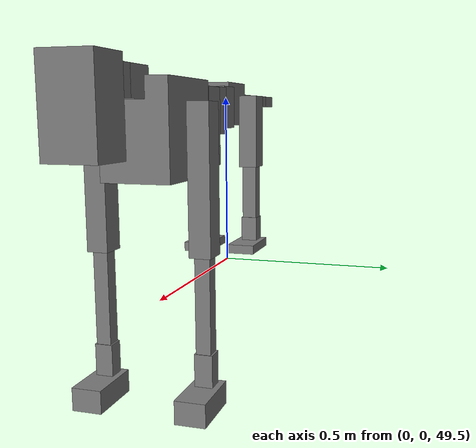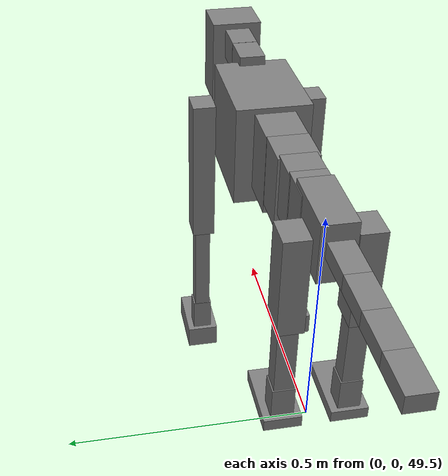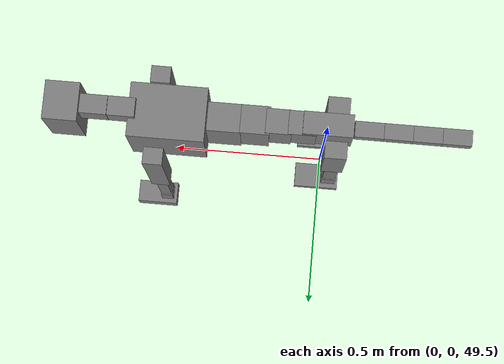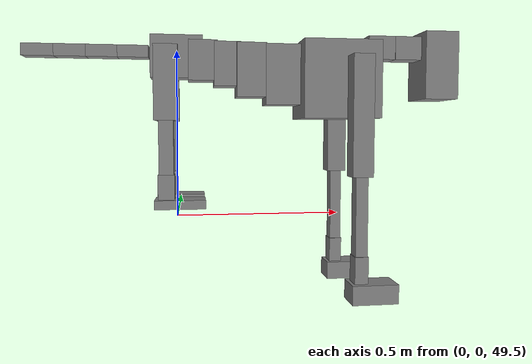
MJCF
<mujoco model="dog">

    <default>
        <joint armature="0.02" stiffness="1" damping="0.2" limited="true"/>
        <geom condim="3" friction="1 0.05 0.05" margin="0.01"/>
        <motor ctrllimited="true" ctrlrange="-1.0 1.0" forcelimited="true" gear="50"/>
    </default>

    <compiler inertiafromgeom="true" angle="radian"/>

    <option timestep="0.016" iterations="50" tolerance="1e-10" solver="Newton" jacobian="dense" cone="pyramidal"/>

    <size nconmax="20000" njmax="60000" nstack="5000000"/>
    <visual>
        <map force="0.1" zfar="30"/>
        <rgba haze="0.15 0.25 0.35 1"/>
        <quality shadowsize="2048"/>
        <global offwidth="800" offheight="800"/>
    </visual>

    <asset>
        <texture type="skybox" builtin="gradient" rgb1="0.3 0.5 0.7" rgb2="0 0 0" width="512" height="512"/>
        <texture name="texplane" type="2d" builtin="checker" rgb1=".2 .3 .4" rgb2=".1 0.15 0.2" width="512" height="512"
                 mark="cross" markrgb=".8 .8 .8"/>
        <texture name="texgeom" type="cube" builtin="flat" mark="cross" width="127" height="1278" rgb1="0.8 0.6 0.4"
                 rgb2="0.8 0.6 0.4" markrgb="1 1 1" random="0.01"/>

        <material name="matplane" reflectance="0.3" texture="texplane" texrepeat="1 1" texuniform="true"/>
        <material name="matgeom" texture="texgeom" texuniform="true" rgba="0.8 0.6 .4 1"/>
    </asset>

    <worldbody>
        <geom name="floor" pos="0 0 0" size="0 0 .25" type="plane" material="matplane" condim="3"/>

        <light directional="false" diffuse=".2 .2 .2" specular="0 0 0" pos="0 0 5" dir="0 0 -1" castshadow="false"/>
        <light mode="targetbodycom" target="torso" directional="false" diffuse=".8 .8 .8" specular="0.3 0.3 0.3"
               pos="0 0 4.0" dir="0 0 -1"/>

        <body name="root" pos="0 0 50">
            <freejoint name="root_1"/>
            <geom type="box" pos="0 0 -0.02" size="0.0774  0.0358  0.063" density="2030"/>

            <body name="spine1" pos="0.054 0 0">
                <joint name="spine1_y" axis="0 1 0" range="0 0.7" limited="true"/>
                <geom type="box" pos="0.02375 0 -0.03" size="0.04375  0.0375  0.05985" density="2030"/>

                <body name="spine2" pos="0.0612 0 0">
                    <joint name="spine2_y" axis="0 1 0" range="-0.15 0.15" limited="true"/>
                    <geom type="box" pos="0.03555  0  -0.04" size="0.04055  0.039  0.06615" density="2030"/>

                    <body name="spine3" pos="0.0730 0 0">
                        <joint name="spine3_y" axis="0 1 0" range="-0.15 0.15" limited="true"/>
                        <geom type="box" pos="0.03555  0  -0.057" size="0.04555  0.0445  0.081" density="2030"/>

                        <body name="spine4" pos="0.0780 0 0">
                            <joint name="spine4_y" axis="0 1 0" range="-0.15 0.15" limited="true"/>
                            <geom type="box" pos="0.05265  0  -0.07" size="0.05265  0.045  0.09135" density="2030"/>

                            <body name="torso" pos="0.1082 0 0">
                                <joint name="torso_y" axis="0 1 0" range="-0.15 0.15" limited="true"/>
                                <geom type="box" pos="0.11925  0  -0.085" size="0.11925  0.085  0.11745"
                                      density="2030"/>

                                <body name="neck1" pos="0.2160  0   0.0180">
                                    <joint name="neck1_y" axis="0 1 0" range="-1.2  -1" limited="true"/>
                                    <geom type="box" pos="0.0423  0  0" size="0.0423  0.03  0.036" density="2325"/>

                                    <body name="neck2" pos="0.0853  0  0">
                                        <joint name="neck2_y" axis="0 1 0" range="0.1  0" limited="true"/>
                                        <geom type="box" pos="0.0423  0  0" size="0.0423  0.03  0.036" density="2325"/>

                                        <body name="head" pos="0.0853  0  0">
                                            <joint name="head_y" axis="0 1 0" range="-0.3  -0.2" limited="true"/>
                                            <geom type="box" pos="0.0531  0  -0.055" size="0.0531  0.06  0.1044"
                                                  density="4030"/>

                                        </body>
                                    </body>
                                </body>

                                <body name="front_shoulder" pos="0.156  0   -0.0480">
                                    <joint name="front_shoulder_y" axis="0 1 0" range="-1 1.5" limited="true"/>
                                    <geom type="box" pos="0 0.13 -0.1499" size="0.0309  0.0264  0.1765" density="1158"/>
                                    <geom type="box" pos="0 -0.13 -0.1499" size="0.0309  0.0264  0.1765"
                                          density="1158"/>

                                    <body name="front_elbow" pos="0  0  -0.2998">
                                        <joint name="front_elbow_y" axis="0 1 0" range="-2 0" limited="true"/>
                                        <geom type="box" pos="0 0.13 -0.1358" size="0.0181  0.0185  0.1358"
                                              density="1081"/>
                                        <geom type="box" pos="0 -0.13 -0.1358" size="0.0181  0.0185  0.1358"
                                              density="1081"/>

                                        <body name="front_wrist" pos="0  0  -0.2717">
                                            <joint name="front_wrist_y" axis="0 1 0" range="-0.2 0" limited="true"/>
                                            <geom type="box" pos="0 0.13 -0.0408" size="0.0202  0.0224  0.0539"
                                                  density="1664"/>
                                            <geom type="box" pos="0 -0.13 -0.0408" size="0.0202  0.0224  0.0539"
                                                  density="1664"/>

                                            <body name="front_finger_end" pos="0  0  -0.0815">
                                                <joint name="front_finger_y" axis="0 1 0" range="-0.4 1"
                                                       limited="true"/>
                                                <geom type="box" pos="0.0377  0.13  -0.0135"
                                                      size="0.0691  0.0377  0.0285" density="1515"/>
                                                <geom type="box" pos="0.0377  -0.13  -0.0135"
                                                      size="0.0691  0.0377  0.0285" density="1515"/>

                                            </body>

                                        </body>
                                    </body>
                                </body>

                            </body>
                        </body>
                    </body>
                </body>
            </body>

            <body name="back_hip" pos="-0.03 0 -0.018">
                <joint name="back_hip_y" axis="0 1 0" range="-1.5 0.3" limited="true"/>
                <geom type="box" pos="0 0.07 -0.0846" size="0.0345  0.0270  0.1074" density="1154"/>
                <geom type="box" pos="0 -0.07 -0.0846" size="0.0345  0.0270  0.1074" density="1154"/>

                <body name="back_knee" pos="0  0  -0.1692">
                    <joint name="back_knee_y" axis="0 1 0" range="0 2.8" limited="true"/>
                    <geom type="box" pos="0 0.07 -0.0956" size="0.0211  0.0208  0.1112" density="1227"/>
                    <geom type="box" pos="0 -0.07 -0.0956" size="0.0211  0.0208  0.1112" density="1227"/>

                    <body name="back_ankle" pos="0  0  -0.1912">
                        <joint name="back_ankle_y" axis="0 1 0" range="-2.2 0" limited="true"/>
                        <geom type="box" pos="0 0.07 -0.0376" size="0.0237  0.0237  0.0488" density="1284"/>
                        <geom type="box" pos="0 -0.07 -0.0376" size="0.0237  0.0237  0.0488" density="1284"/>

                        <body name="back_toe_end" pos="0  0  -0.0751">
                            <joint name="back_toe_y" axis="0 1 0" range="-0.4 1" limited="true"/>
                            <geom type="box" pos="0.0397  0.07  0.0020" size="0.0727  0.0397  0.0130" density="1515"/>
                            <geom type="box" pos="0.0397  -0.07  0.0020" size="0.0727  0.0397  0.0130" density="1515"/>

                        </body>
                    </body>
                </body>
            </body>

            <body name="tail1" pos="-0.074 0 -0.006">
                <joint name="tail1_y" axis="0 1 0" range="-0.2 0.2" limited="true"/>
                <geom type="box" pos="-0.0536  0  0" size="0.045  0.025  0.0175" density="1587"/>

                <body name="tail2" pos="-0.09 0 0">
                    <joint name="tail2_y" axis="0 1 0" range="-0.2 0.2" limited="true"/>
                    <geom type="box" pos="-0.0536  0  0" size="0.045  0.025  0.0175" density="1587"/>

                    <body name="tail3" pos="-0.09 0 0">
                        <joint name="tail3_y" axis="0 1 0" range="-0.2 0.2" limited="true"/>
                        <geom type="box" pos="-0.0536  0  0" size="0.045  0.025  0.0175" density="1587"/>

                        <body name="tail4" pos="-0.09 0 0">
                            <joint name="tail4_y" axis="0 1 0" range="-0.2 0.2" limited="true"/>
                            <geom type="box" pos="-0.0536  0  0" size="0.045  0.025  0.0175" density="1587"/>

                        </body>
                    </body>
                </body>
            </body>
        </body>
    </worldbody>

    <actuator>
        <motor joint="spine1_y" forcerange="-150 150     "/>
        <motor joint="spine2_y" forcerange="-150 150     "/>
        <motor joint="spine3_y" forcerange="-150 150     "/>
        <motor joint="spine4_y" forcerange="-150 150     "/>
        <motor joint="torso_y" forcerange="-150 150     "/>
        <motor joint="neck1_y" forcerange="-100 100       "/>
        <motor joint="neck2_y" forcerange="-100 100       "/>
        <motor joint="head_y" forcerange="-150 150       "/>
        <motor joint="front_shoulder_y" forcerange="-121.59 154.20"/>
        <motor joint="front_elbow_y" forcerange="-105.55 129.23"/>
        <motor joint="front_wrist_y" forcerange="-100.88 78.65"/>
        <motor joint="front_finger_y" forcerange="-76.50 84.63"/>
        <motor joint="back_hip_y" forcerange="-310.00 250.28"/>
        <motor joint="back_knee_y" forcerange="-247.44 255.65"/>
        <motor joint="back_angle_y" forcerange="-52.03 226.71"/>
        <motor joint="back_toe_y" forcerange="-113.91 123.43"/>
        <motor joint="tail1_y" forcerange="-50 50     "/>
        <motor joint="tail2_y" forcerange="-50 50     "/>
        <motor joint="tail3_y" forcerange="-50 50     "/>
        <motor joint="tail4_y" forcerange="-50 50     "/>
    </actuator>
</mujoco>
